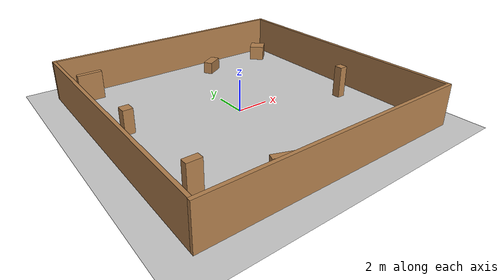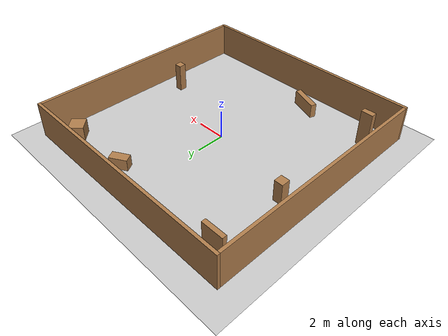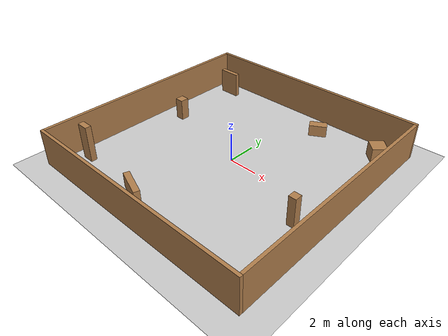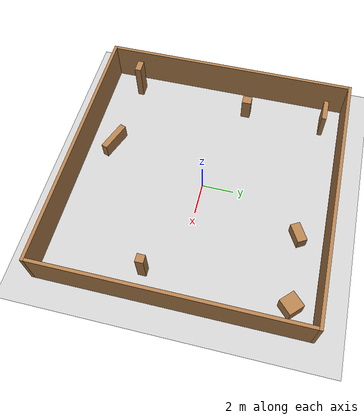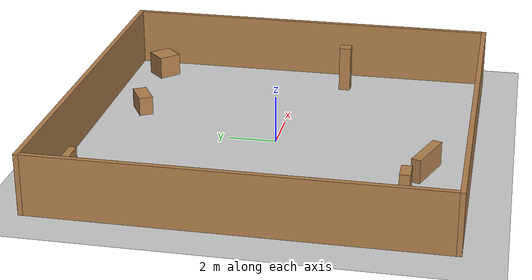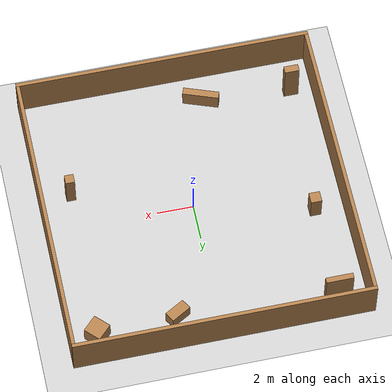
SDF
<?xml version="1.0"?>
<sdf version="1.7">
  <world name="default">

    <gravity>0 0 -9.80665</gravity>
    <physics name="1ms" type="ode" default="true">
      <max_step_size>0.001</max_step_size>
      <real_time_factor>1</real_time_factor>
      <real_time_update_rate>1000</real_time_update_rate>
      <ode>
        <solver>
          <type>quick</type>
          <iters>50</iters>
          <sor>1.3</sor>
          <island_threads>4</island_threads>
          <friction_model>cone_model</friction_model>
        </solver>
        <constraints>
          <cfm>0</cfm>
          <erp>0.2</erp>
          <contact_max_correcting_vel>100</contact_max_correcting_vel>
          <contact_surface_layer>0.001</contact_surface_layer>
        </constraints>
      </ode>
    </physics>
    <plugin name="real_time_lock" filename="librover_sim_real_time_lock.so">
      <time_constant>0.5</time_constant>
      <max_boost>0.5</max_boost>
      <max_lag>0.5</max_lag>
    </plugin>

    <scene>
      <ambient>0.4 0.4 0.4 1</ambient>
      <background>0.7 0.7 0.7 1</background>
      <shadows>1</shadows>
    </scene>

    <light name="sun" type="directional">
      <cast_shadows>1</cast_shadows>
      <pose>0 0 10 0 0 0</pose>
      <diffuse>0.8 0.8 0.8 1</diffuse>
      <specular>0.2 0.2 0.2 1</specular>
      <attenuation>
        <range>1000</range>
        <constant>0.9</constant>
        <linear>0.01</linear>
        <quadratic>0.001</quadratic>
      </attenuation>
      <direction>-0.5 0.1 -0.9</direction>
    </light>

    <model name="ground_plane">
      <static>1</static>
      <link name="link">
        <collision name="collision">
          <geometry>
            <plane><normal>0 0 1</normal><size>200 200</size></plane>
          </geometry>
          <!-- Gazebo takes the lower mu of the two surfaces: the robots' own set friction. -->
          <surface>
            <friction>
              <ode><mu>100</mu><mu2>50</mu2></ode>
            </friction>
          </surface>
          <max_contacts>10</max_contacts>
        </collision>
        <visual name="visual">
          <cast_shadows>0</cast_shadows>
          <geometry>
            <plane><normal>0 0 1</normal><size>200 200</size></plane>
          </geometry>
          <material>
            <script>
              <uri>file://media/materials/scripts/gazebo.material</uri>
              <name>Gazebo/Grey</name>
            </script>
          </material>
        </visual>
      </link>
    </model>

    <model name="arena">
      <static>1</static>
      <link name="link">
        <collision name="wall_n">
          <pose>0 8.1 1.25 0 0 0</pose>
          <geometry><box><size>16.4 0.2 2.5</size></box></geometry>
        </collision>
        <visual name="wall_n_visual">
          <pose>0 8.1 1.25 0 0 0</pose>
          <geometry><box><size>16.4 0.2 2.5</size></box></geometry>
          <material><script><uri>file://media/materials/scripts/gazebo.material</uri><name>Gazebo/Wood</name></script></material>
        </visual>
        <collision name="wall_s">
          <pose>0 -8.1 1.25 0 0 0</pose>
          <geometry><box><size>16.4 0.2 2.5</size></box></geometry>
        </collision>
        <visual name="wall_s_visual">
          <pose>0 -8.1 1.25 0 0 0</pose>
          <geometry><box><size>16.4 0.2 2.5</size></box></geometry>
          <material><script><uri>file://media/materials/scripts/gazebo.material</uri><name>Gazebo/Wood</name></script></material>
        </visual>
        <collision name="wall_e">
          <pose>8.1 0 1.25 0 0 0</pose>
          <geometry><box><size>0.2 16 2.5</size></box></geometry>
        </collision>
        <visual name="wall_e_visual">
          <pose>8.1 0 1.25 0 0 0</pose>
          <geometry><box><size>0.2 16 2.5</size></box></geometry>
          <material><script><uri>file://media/materials/scripts/gazebo.material</uri><name>Gazebo/Wood</name></script></material>
        </visual>
        <collision name="wall_w">
          <pose>-8.1 0 1.25 0 0 0</pose>
          <geometry><box><size>0.2 16 2.5</size></box></geometry>
        </collision>
        <visual name="wall_w_visual">
          <pose>-8.1 0 1.25 0 0 0</pose>
          <geometry><box><size>0.2 16 2.5</size></box></geometry>
          <material><script><uri>file://media/materials/scripts/gazebo.material</uri><name>Gazebo/Wood</name></script></material>
        </visual>
        <collision name="pillar_e">
          <pose>6.4 -2 1 0 0 0</pose>
          <geometry><box><size>0.5 0.5 2</size></box></geometry>
        </collision>
        <visual name="pillar_e_visual">
          <pose>6.4 -2 1 0 0 0</pose>
          <geometry><box><size>0.5 0.5 2</size></box></geometry>
          <material><script><uri>file://media/materials/scripts/gazebo.material</uri><name>Gazebo/Wood</name></script></material>
        </visual>
        <collision name="crate_n">
          <pose>2.2 6.4 0.4 0 0 0.5236</pose>
          <geometry><box><size>1.2 0.6 0.8</size></box></geometry>
        </collision>
        <visual name="crate_n_visual">
          <pose>2.2 6.4 0.4 0 0 0.5236</pose>
          <geometry><box><size>1.2 0.6 0.8</size></box></geometry>
          <material><script><uri>file://media/materials/scripts/gazebo.material</uri><name>Gazebo/Wood</name></script></material>
        </visual>
        <collision name="post_w">
          <pose>-6.4 1.6 0.75 0 0 0</pose>
          <geometry><box><size>0.6 0.6 1.5</size></box></geometry>
        </collision>
        <visual name="post_w_visual">
          <pose>-6.4 1.6 0.75 0 0 0</pose>
          <geometry><box><size>0.6 0.6 1.5</size></box></geometry>
          <material><script><uri>file://media/materials/scripts/gazebo.material</uri><name>Gazebo/Wood</name></script></material>
        </visual>
        <collision name="bench_s">
          <pose>-1.8 -6.4 0.5 0 0 -0.3491</pose>
          <geometry><box><size>2 0.4 1</size></box></geometry>
        </collision>
        <visual name="bench_s_visual">
          <pose>-1.8 -6.4 0.5 0 0 -0.3491</pose>
          <geometry><box><size>2 0.4 1</size></box></geometry>
          <material><script><uri>file://media/materials/scripts/gazebo.material</uri><name>Gazebo/Wood</name></script></material>
        </visual>
        <collision name="cube_ne">
          <pose>6.6 6.6 0.5 0 0 0.7854</pose>
          <geometry><box><size>1 1 1</size></box></geometry>
        </collision>
        <visual name="cube_ne_visual">
          <pose>6.6 6.6 0.5 0 0 0.7854</pose>
          <geometry><box><size>1 1 1</size></box></geometry>
          <material><script><uri>file://media/materials/scripts/gazebo.material</uri><name>Gazebo/Wood</name></script></material>
        </visual>
        <collision name="locker_sw">
          <pose>-6.8 -6 1.25 0 0 0</pose>
          <geometry><box><size>0.8 0.4 2.5</size></box></geometry>
        </collision>
        <visual name="locker_sw_visual">
          <pose>-6.8 -6 1.25 0 0 0</pose>
          <geometry><box><size>0.8 0.4 2.5</size></box></geometry>
          <material><script><uri>file://media/materials/scripts/gazebo.material</uri><name>Gazebo/Wood</name></script></material>
        </visual>
        <collision name="screen_nw">
          <pose>-6.5 6.8 0.9 0 0 0</pose>
          <geometry><box><size>1.5 0.3 1.8</size></box></geometry>
        </collision>
        <visual name="screen_nw_visual">
          <pose>-6.5 6.8 0.9 0 0 0</pose>
          <geometry><box><size>1.5 0.3 1.8</size></box></geometry>
          <material><script><uri>file://media/materials/scripts/gazebo.material</uri><name>Gazebo/Wood</name></script></material>
        </visual>
      </link>
    </model>

  </world>
</sdf>
